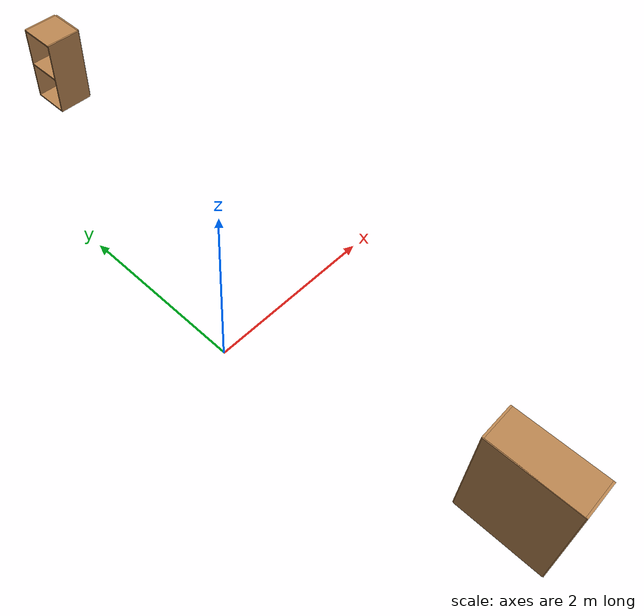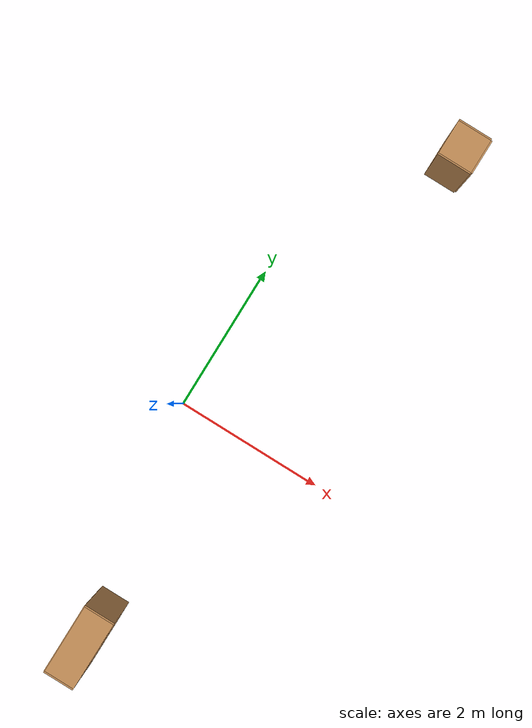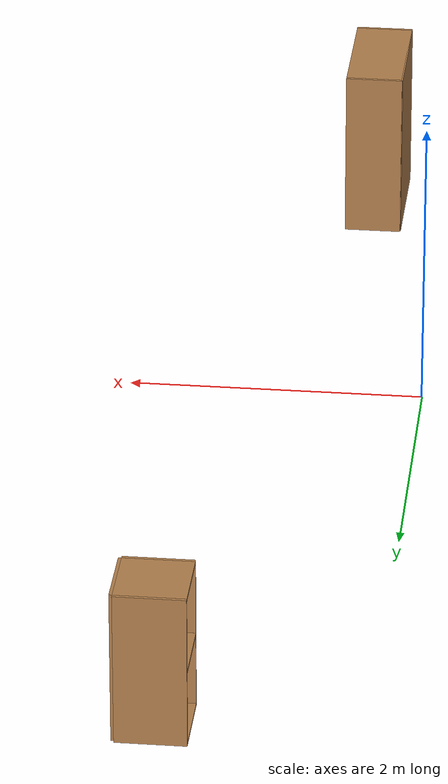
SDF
<sdf version="1.7">
 <world name="default">
  <gravity>0 0 -9.8</gravity>
  <physics name="default_physics" default="0" type="ode">
   <max_step_size>0.001</max_step_size>
   <real_time_factor>1</real_time_factor>
   <real_time_update_rate>1000</real_time_update_rate>
  </physics>
  <light name="Warehouse_CeilingLight_003" type="point">
   <pose>0 0 9 0 -0 0</pose>
   <diffuse>0.5 0.5 0.5 1</diffuse>
   <specular>0.2 0.2 0.2 1</specular>
   <attenuation>
    <range>80</range>
    <constant>0.3</constant>
    <linear>0.01</linear>
    <quadratic>0.001</quadratic>
   </attenuation>
   <direction>0.1 0.1 -1</direction>
   <spot><inner_angle>0</inner_angle><outer_angle>0</outer_angle><falloff>0</falloff></spot>
  </light>
  <magnetic_field>6e-06 2.3e-05 -4.2e-05</magnetic_field>
  <atmosphere type="adiabatic"/>
  <scene><ambient>0.4 0.4 0.4 1</ambient><background>0.7 0.7 0.7 1</background><shadows>1</shadows></scene>
  <audio><device>default</device></audio>
  <spherical_coordinates>
   <surface_model>EARTH_WGS84</surface_model>
   <latitude_deg>0</latitude_deg>
   <longitude_deg>0</longitude_deg>
   <elevation>0</elevation>
   <heading_deg>0</heading_deg>
  </spherical_coordinates>
  <model name="cabinet">
   <static>1</static>
   <link name="cabinet_bottom_plate">
    <inertial>
     <pose>0 0 -1 0 -0 0</pose>
     <inertia><ixx>2.05</ixx><ixy>0</ixy><ixz>0</ixz><iyy>2.05</iyy><iyz>0</iyz><izz>2.05</izz></inertia>
     <mass>25</mass>
    </inertial>
    <collision name="cabinet_bottom_plate_geom">
     <pose>0 0 0.01 0 -0 0</pose>
     <geometry><box><size>0.45 0.45 0.02</size></box></geometry>
    </collision>
    <visual name="cabinet_bottom_plate_geom_visual">
     <pose>0 0 0.01 0 -0 0</pose>
     <geometry><box><size>0.45 0.45 0.02</size></box></geometry>
     <material>
      <script><uri>file://media/materials/scripts/gazebo.material</uri><name>Gazebo/Wood</name></script>
     </material>
    </visual>
    <collision name="cabinet_bottom_plate_geom_cabinet_back_plate">
     <pose>0.235 0 0.51 0 -0 0</pose>
     <geometry><box><size>0.02 0.45 1.02</size></box></geometry>
    </collision>
    <visual name="cabinet_bottom_plate_geom_cabinet_back_plate_visual">
     <pose>0.235 0 0.51 0 -0 0</pose>
     <geometry><box><size>0.02 0.45 1.02</size></box></geometry>
     <material>
      <script><uri>file://media/materials/scripts/gazebo.material</uri><name>Gazebo/Wood</name></script>
     </material>
    </visual>
    <collision name="cabinet_bottom_plate_geom_cabinet_left_plate">
     <pose>0 0.235 0.51 0 -0 0</pose>
     <geometry><box><size>0.45 0.02 1.02</size></box></geometry>
    </collision>
    <visual name="cabinet_bottom_plate_geom_cabinet_left_plate_visual">
     <pose>0 0.235 0.51 0 -0 0</pose>
     <geometry><box><size>0.45 0.02 1.02</size></box></geometry>
     <material>
      <script><uri>file://media/materials/scripts/gazebo.material</uri><name>Gazebo/Wood</name></script>
     </material>
    </visual>
    <collision name="cabinet_bottom_plate_geom_cabinet_middle_plate">
     <pose>0 0 0.51 0 -0 0</pose>
     <geometry><box><size>0.45 0.45 0.02</size></box></geometry>
    </collision>
    <visual name="cabinet_bottom_plate_geom_cabinet_middle_plate_visual">
     <pose>0 0 0.51 0 -0 0</pose>
     <geometry><box><size>0.45 0.45 0.02</size></box></geometry>
     <material>
      <script><uri>file://media/materials/scripts/gazebo.material</uri><name>Gazebo/Wood</name></script>
     </material>
    </visual>
    <collision name="cabinet_bottom_plate_geom_cabinet_right_plate">
     <pose>0 -0.235 0.51 0 -0 0</pose>
     <geometry><box><size>0.45 0.02 1.02</size></box></geometry>
    </collision>
    <visual name="cabinet_bottom_plate_geom_cabinet_right_plate_visual">
     <pose>0 -0.235 0.51 0 -0 0</pose>
     <geometry><box><size>0.45 0.02 1.02</size></box></geometry>
     <material>
      <script><uri>file://media/materials/scripts/gazebo.material</uri><name>Gazebo/Wood</name></script>
     </material>
    </visual>
    <collision name="cabinet_bottom_plate_geom_cabinet_top_plate">
     <pose>0 0 1.01 0 -0 0</pose>
     <geometry><box><size>0.45 0.45 0.02</size></box></geometry>
    </collision>
    <visual name="cabinet_bottom_plate_geom_cabinet_top_plate_visual">
     <pose>0 0 1.01 0 -0 0</pose>
     <geometry><box><size>0.45 0.45 0.02</size></box></geometry>
     <material>
      <script><uri>file://media/materials/scripts/gazebo.material</uri><name>Gazebo/Wood</name></script>
     </material>
    </visual>
   </link>
   <pose>1.29595 4.38825 0 0 -0 0</pose>
  </model>
  <model name="bookshelf_clone">
   <static>1</static>
   <link name="link">
    <inertial><mass>1</mass></inertial>
    <collision name="back">
     <pose>0 0.005 0.6 0 -0 0</pose>
     <geometry><box><size>0.9 0.01 1.2</size></box></geometry>
    </collision>
    <visual name="visual1">
     <pose>0 0.005 0.6 0 -0 0</pose>
     <geometry><box><size>0.9 0.01 1.2</size></box></geometry>
     <material>
      <script><uri>file://media/materials/scripts/gazebo.material</uri><name>Gazebo/Wood</name></script>
     </material>
    </visual>
    <collision name="left_side">
     <pose>0.45 -0.195 0.6 0 -0 0</pose>
     <geometry><box><size>0.02 0.4 1.2</size></box></geometry>
    </collision>
    <visual name="visual2">
     <pose>0.45 -0.195 0.6 0 -0 0</pose>
     <geometry><box><size>0.02 0.4 1.2</size></box></geometry>
     <material>
      <script><uri>file://media/materials/scripts/gazebo.material</uri><name>Gazebo/Wood</name></script>
     </material>
    </visual>
    <collision name="right_side">
     <pose>-0.45 -0.195 0.6 0 -0 0</pose>
     <geometry><box><size>0.02 0.4 1.2</size></box></geometry>
    </collision>
    <visual name="visual3">
     <pose>-0.45 -0.195 0.6 0 -0 0</pose>
     <geometry><box><size>0.02 0.4 1.2</size></box></geometry>
     <material>
      <script><uri>file://media/materials/scripts/gazebo.material</uri><name>Gazebo/Wood</name></script>
     </material>
    </visual>
    <collision name="bottom">
     <pose>0 -0.195 0.03 0 -0 0</pose>
     <geometry><box><size>0.88 0.4 0.06</size></box></geometry>
    </collision>
    <visual name="visual4">
     <pose>0 -0.195 0.03 0 -0 0</pose>
     <geometry><box><size>0.88 0.4 0.06</size></box></geometry>
     <material>
      <script><uri>file://media/materials/scripts/gazebo.material</uri><name>Gazebo/Wood</name></script>
     </material>
    </visual>
    <collision name="top">
     <pose>0 -0.195 1.19 0 -0 0</pose>
     <geometry><box><size>0.88 0.4 0.02</size></box></geometry>
    </collision>
    <visual name="visual5">
     <pose>0 -0.195 1.19 0 -0 0</pose>
     <geometry><box><size>0.88 0.4 0.02</size></box></geometry>
     <material>
      <script><uri>file://media/materials/scripts/gazebo.material</uri><name>Gazebo/Wood</name></script>
     </material>
    </visual>
    <collision name="low_shelf">
     <pose>0 -0.195 0.43 0 -0 0</pose>
     <geometry><box><size>0.88 0.4 0.02</size></box></geometry>
    </collision>
    <visual name="visual6">
     <pose>0 -0.195 0.43 0 -0 0</pose>
     <geometry><box><size>0.88 0.4 0.02</size></box></geometry>
     <material>
      <script><uri>file://media/materials/scripts/gazebo.material</uri><name>Gazebo/Wood</name></script>
     </material>
    </visual>
    <collision name="high_shelf">
     <pose>0 -0.195 0.8 0 -0 0</pose>
     <geometry><box><size>0.88 0.4 0.02</size></box></geometry>
    </collision>
    <visual name="visual7">
     <pose>0 -0.195 0.8 0 -0 0</pose>
     <geometry><box><size>0.88 0.4 0.02</size></box></geometry>
     <material>
      <script><uri>file://media/materials/scripts/gazebo.material</uri><name>Gazebo/Wood</name></script>
     </material>
    </visual>
   </link>
   <pose>0.36 -3 0 0 -0 1.57</pose>
  </model>
 </world>
</sdf>
